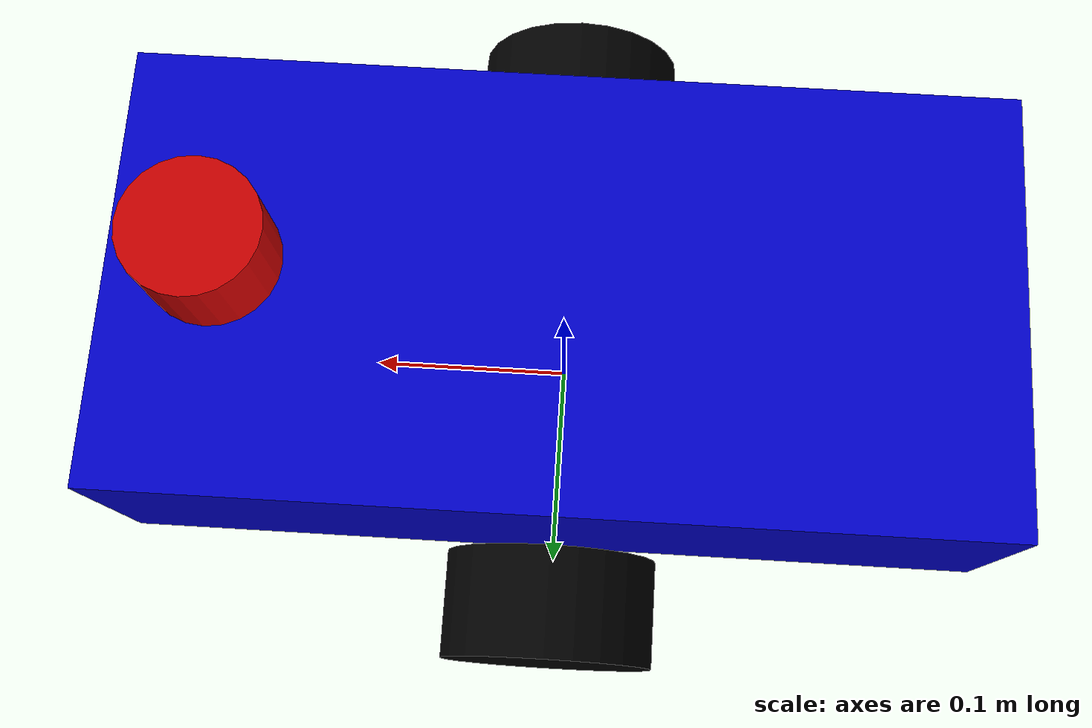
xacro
<?xml version="1.0"?>
<robot name="lidar_car" xmlns:xacro="http://www.ros.org/wiki/xacro">

  <!-- ===== MATERIALS ===== -->
  <material name="blue">
    <color rgba="0.0 0.0 0.8 1.0"/>
  </material>
  <material name="black">
    <color rgba="0.0 0.0 0.0 1.0"/>
  </material>
  <material name="red">
    <color rgba="0.8 0.0 0.0 1.0"/>
  </material>

  <!-- ===== BASE LINK ===== -->
  <link name="base_footprint"/>

  <joint name="base_joint" type="fixed">
    <parent link="base_footprint"/>
    <child  link="base_link"/>
    <origin xyz="0 0 0.1" rpy="0 0 0"/>
  </joint>

  <link name="base_link">
    <visual>
      <geometry><box size="0.4 0.2 0.1"/></geometry>
      <material name="blue"/>
    </visual>
    <collision>
      <geometry><box size="0.4 0.2 0.1"/></geometry>
    </collision>
    <inertial>
      <mass value="2.0"/>
      <inertia ixx="0.0083" ixy="0" ixz="0"
               iyy="0.0333" iyz="0" izz="0.0375"/>
    </inertial>
  </link>

  <!-- ===== LEFT WHEEL ===== -->
  <joint name="left_wheel_joint" type="continuous">
    <parent link="base_link"/>
    <child  link="left_wheel"/>
    <origin xyz="0 0.13 -0.05" rpy="-1.5708 0 0"/>
    <axis xyz="0 0 1"/>
  </joint>

  <link name="left_wheel">
    <visual>
      <geometry><cylinder length="0.05" radius="0.05"/></geometry>
      <material name="black"/>
    </visual>
    <collision>
      <geometry><cylinder length="0.05" radius="0.05"/></geometry>
    </collision>
    <inertial>
      <mass value="0.5"/>
      <inertia ixx="0.000317" ixy="0" ixz="0"
               iyy="0.000317" iyz="0" izz="0.000625"/>
    </inertial>
  </link>

  <!-- ===== RIGHT WHEEL ===== -->
  <joint name="right_wheel_joint" type="continuous">
    <parent link="base_link"/>
    <child  link="right_wheel"/>
    <origin xyz="0 -0.13 -0.05" rpy="-1.5708 0 0"/>
    <axis xyz="0 0 1"/>
  </joint>

  <link name="right_wheel">
    <visual>
      <geometry><cylinder length="0.05" radius="0.05"/></geometry>
      <material name="black"/>
    </visual>
    <collision>
      <geometry><cylinder length="0.05" radius="0.05"/></geometry>
    </collision>
    <inertial>
      <mass value="0.5"/>
      <inertia ixx="0.000317" ixy="0" ixz="0"
               iyy="0.000317" iyz="0" izz="0.000625"/>
    </inertial>
  </link>

  <!-- ===== CASTER WHEEL ===== -->
  <joint name="caster_joint" type="fixed">
    <parent link="base_link"/>
    <child  link="caster_wheel"/>
    <origin xyz="-0.15 0 -0.05" rpy="0 0 0"/>
  </joint>

  <link name="caster_wheel">
    <visual>
      <geometry><sphere radius="0.05"/></geometry>
      <material name="black"/>
    </visual>
    <collision>
      <geometry><sphere radius="0.05"/></geometry>
    </collision>
    <inertial>
      <mass value="0.3"/>
      <inertia ixx="0.0003" ixy="0" ixz="0"
               iyy="0.0003" iyz="0" izz="0.0003"/>
    </inertial>
  </link>

  <!-- ===== LIDAR MOUNT ===== -->
  <joint name="lidar_joint" type="fixed">
    <parent link="base_link"/>
    <child  link="lidar_link"/>
    <origin xyz="0.15 0 0.08" rpy="0 0 0"/>
  </joint>

  <link name="lidar_link">
    <visual>
      <geometry><cylinder length="0.04" radius="0.03"/></geometry>
      <material name="red"/>
    </visual>
    <collision>
      <geometry><cylinder length="0.04" radius="0.03"/></geometry>
    </collision>
    <inertial>
      <mass value="0.1"/>
      <inertia ixx="0.0001" ixy="0" ixz="0"
               iyy="0.0001" iyz="0" izz="0.0001"/>
    </inertial>
  </link>

  <!-- ===== GAZEBO PLUGINS ===== -->

  <!-- Differential Drive -->
  <gazebo>
    <plugin name="diff_drive" filename="libgazebo_ros_diff_drive.so">
      <left_joint>left_wheel_joint</left_joint>
      <right_joint>right_wheel_joint</right_joint>
      <wheel_separation>0.26</wheel_separation>
      <wheel_diameter>0.1</wheel_diameter>
      <max_wheel_torque>20</max_wheel_torque>
      <max_wheel_acceleration>1.0</max_wheel_acceleration>
      <command_topic>cmd_vel</command_topic>
      <publish_odom>true</publish_odom>
      <publish_odom_tf>true</publish_odom_tf>
      <publish_wheel_tf>true</publish_wheel_tf>
      <odometry_frame>odom</odometry_frame>
      <robot_base_frame>base_footprint</robot_base_frame>
    </plugin>
  </gazebo>

  <!-- LiDAR Sensor -->
  <gazebo reference="lidar_link">
    <sensor name="lidar" type="ray">
      <always_on>true</always_on>
      <visualize>true</visualize>
      <update_rate>10</update_rate>
      <ray>
        <scan>
          <horizontal>
            <samples>360</samples>
            <resolution>1</resolution>
            <min_angle>-3.14159</min_angle>
            <max_angle>3.14159</max_angle>
          </horizontal>
        </scan>
        <range>
          <min>0.12</min>
          <max>10.0</max>
          <resolution>0.01</resolution>
        </range>
        <noise>
          <type>gaussian</type>
          <mean>0.0</mean>
          <stddev>0.01</stddev>
        </noise>
      </ray>
      <plugin name="lidar_plugin" filename="libgazebo_ros_ray_sensor.so">
        <ros>
          <remapping>~/out:=scan</remapping>
        </ros>
        <output_type>sensor_msgs/LaserScan</output_type>
        <frame_name>lidar_link</frame_name>
      </plugin>
    </sensor>
  </gazebo>

  <!-- Caster friction = 0 -->
  <gazebo reference="caster_wheel">
    <mu1>0.0</mu1>
    <mu2>0.0</mu2>
  </gazebo>

</robot>
